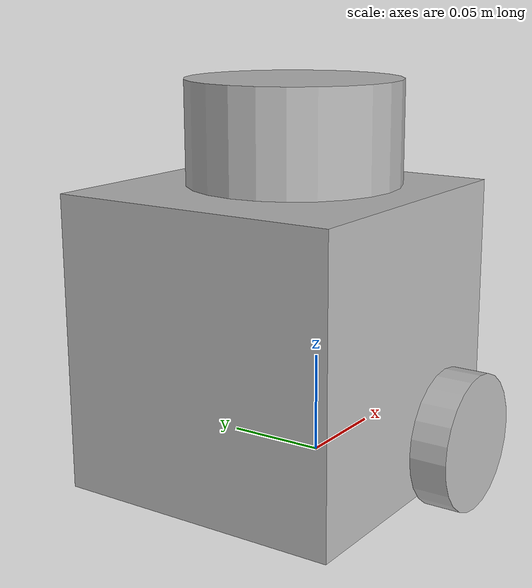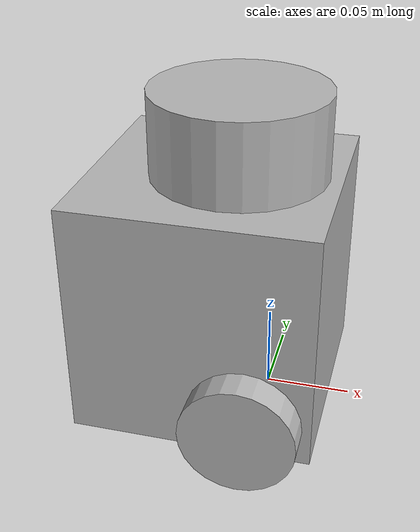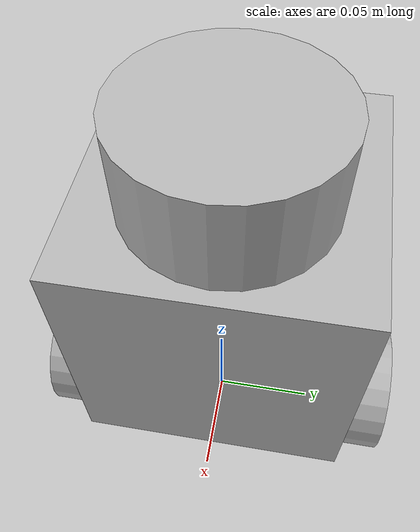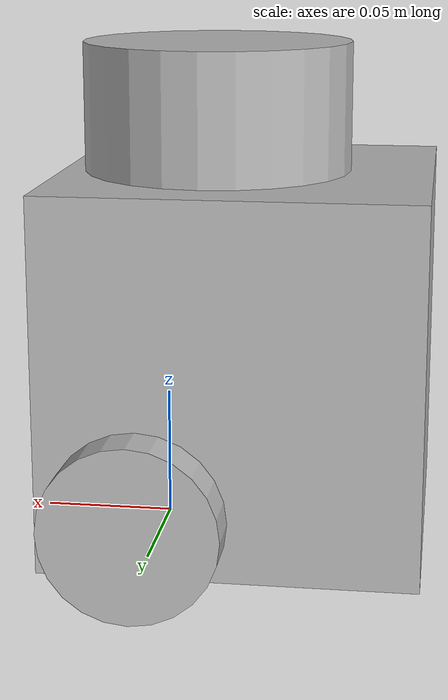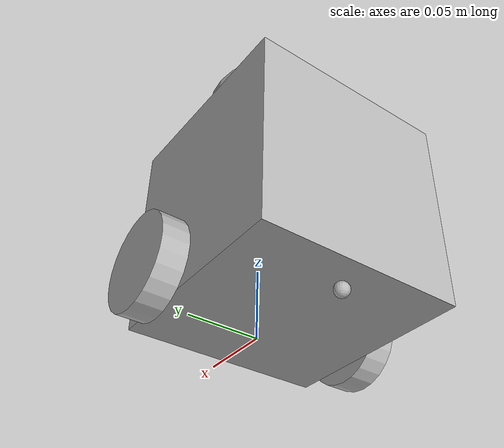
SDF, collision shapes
<?xml version="1.0" ?>
<sdf version="1.5">
  <model name="turtlebot3_burger_picam">

    <link name="base">

      <inertial>
        <pose>-0.032 0 0.070 0 0 0</pose>
        <inertia>
          <ixx>0.001</ixx>
          <ixy>0.000</ixy>
          <ixz>0.000</ixz>
          <iyy>0.001</iyy>
          <iyz>0.000</iyz>
          <izz>0.001</izz>
        </inertia>
        <mass>1.0</mass>
      </inertial>

      <collision name="base_collision">
        <pose>-0.032 0 0.070 0 0 0</pose>
        <geometry>
          <box>
            <size>0.140 0.140 0.140</size>
          </box>
        </geometry>
      </collision>

      <visual name="base_visual">
        <pose>-0.032 0 0 0 0 0</pose>
        <geometry>
          <mesh>
            <uri>model://turtlebot3_common_meshes/burger_base.dae</uri>
            <scale>0.001 0.001 0.001</scale>
          </mesh>
        </geometry>
      </visual>

      <collision name="caster_collision">
        <pose>-0.081 0 -0.004 0 0 0</pose>
        <geometry>
          <sphere>
            <radius>0.005000</radius>
          </sphere>
        </geometry>
        <surface>
          <friction>
            <ode>
              <mu>100000.0</mu>
              <mu2>100000.0</mu2>
              <fdir1>0 0 0</fdir1>
              <slip1>0</slip1>
              <slip2>0</slip2>
            </ode>
          </friction>
        </surface>
      </collision>
    </link>

  <link name="lidar">
    <inertial>
      <pose>-0.020 0 0.161 0 0 0</pose>
      <inertia>
        <ixx>0.001</ixx>
        <ixy>0.000</ixy>
        <ixz>0.000</ixz>
        <iyy>0.001</iyy>
        <iyz>0.000</iyz>
        <izz>0.001</izz>
      </inertia>
      <mass>0.125</mass>
    </inertial>

    <collision name="lidar_sensor_collision">
        <pose>-0.020 0 0.161 0 0 0</pose>
        <geometry>
          <cylinder>
            <radius>0.0508</radius>
            <length>0.055</length>
          </cylinder>
        </geometry>
      </collision>

      <visual name="lidar_sensor_visual">
        <pose>-0.032 0 0.171 0 0 0</pose>
        <geometry>
          <mesh>
            <uri>model://turtlebot3_common_meshes/lds.dae</uri>
            <scale>0.001 0.001 0.001</scale>
          </mesh>
        </geometry>
      </visual>

      <sensor name="hls_lfcd_lds" type="ray">
        <always_on>1</always_on>
        <visualize>0</visualize>
        <pose>-0.032 0 0.171 0 0 0</pose>
        <update_rate>1800</update_rate>
        <ray>
          <scan>
            <horizontal>
              <samples>360</samples>
              <resolution>1.000000</resolution>
              <min_angle>0.000000</min_angle>
              <max_angle>6.280000</max_angle>
            </horizontal>
          </scan>
          <range>
            <min>0.120000</min>
            <max>3.5</max>
            <resolution>0.015000</resolution>
          </range>
          <noise>
            <type>gaussian</type>
            <mean>0.0</mean>
            <stddev>0.01</stddev>
          </noise>
        </ray>
      </sensor>
    </link>

    <link name="left_wheel">

      <inertial>
        <pose>0 0.08 0.023 -1.57 0 0</pose>
        <inertia>
          <ixx>0.001</ixx>
          <ixy>0.000</ixy>
          <ixz>0.000</ixz>
          <iyy>0.001</iyy>
          <iyz>0.000</iyz>
          <izz>0.001</izz>
        </inertia>
        <mass>0.1</mass>
      </inertial>

      <collision name="left_wheel_collision">
        <pose>0 0.08 0.023 -1.57 0 0</pose>
        <geometry>
          <cylinder>
            <radius>0.033</radius>
            <length>0.018</length>
          </cylinder>
        </geometry>
          <surface>
          <!-- This friction pamareter don't contain reliable data!! -->
            <friction>
              <ode>
                <mu>100000.0</mu>
                <mu2>100000.0</mu2>
                <fdir1>0 0 0</fdir1>
                <slip1>0.0</slip1>
                <slip2>0.0</slip2>
              </ode>
          </friction>
        </surface>
      </collision>

      <visual name="left_wheel_visual">
        <pose>0 0.08 0.023 0 0 0</pose>
        <geometry>
          <mesh>
            <uri>model://turtlebot3_common_meshes/tire.dae</uri>
            <scale>0.001 0.001 0.001</scale>
          </mesh>
        </geometry>
      </visual>
    </link>

    <link name="right_wheel">

      <inertial>
        <pose>0.0 -0.08 0.023 -1.57 0 0</pose>
        <inertia>
          <ixx>0.001</ixx>
          <ixy>0.000</ixy>
          <ixz>0.000</ixz>
          <iyy>0.001</iyy>
          <iyz>0.000</iyz>
          <izz>0.001</izz>
        </inertia>
        <mass>0.1</mass>
      </inertial>

      <collision name="right_wheel_collision">
        <pose>0.0 -0.08 0.023 -1.57 0 0</pose>
        <geometry>
          <cylinder>
            <radius>0.033</radius>
            <length>0.018</length>
          </cylinder>
        </geometry>
          <surface>
          <!-- This friction pamareter don't contain reliable data!! -->
            <friction>
              <ode>
                <mu>100000.0</mu>
                <mu2>100000.0</mu2>
                <fdir1>0 0 0</fdir1>
                <slip1>0.0</slip1>
                <slip2>0.0</slip2>
              </ode>
          </friction>
        </surface>
      </collision>

      <visual name="right_wheel_visual">
        <pose>0.0 -0.08 0.023 0 0 0</pose>
        <geometry>
          <mesh>
            <uri>model://turtlebot3_common_meshes/tire.dae</uri>
            <scale>0.001 0.001 0.001</scale>
          </mesh>
        </geometry>
      </visual>
    </link>

    <joint name="left_wheel_joint" type="revolute">
      <parent>base</parent>
      <child>left_wheel</child>
      <pose>0.0 0.08 0.023 -1.57 0 0</pose>
      <axis>
        <xyz>0 1 0</xyz>
      </axis>
    </joint>

    <joint name="right_wheel_joint" type="revolute">
      <parent>base</parent>
      <child>right_wheel</child>
      <pose>0.0 -0.08 0.023 -1.57 0 0</pose>
      <axis>
        <xyz>0 1 0</xyz>
      </axis>
    </joint>

    <joint name="lidar_joint" type="fixed">
      <parent>base</parent>
      <child>lidar</child>
      <pose>-0.032 0 0.171 0 0 0</pose>
      <axis>
        <xyz>0 0 1</xyz>
        <use_parent_model_frame>true</use_parent_model_frame>
      </axis>
    </joint>

    <link name="image">
      <inertial>
        <pose>-0.069 0 0.104 0 0 0</pose>
        <inertia>
          <ixx>0.001</ixx>
          <ixy>0.000</ixy>
          <ixz>0.000</ixz>
          <iyy>0.001</iyy>
          <iyz>0.000</iyz>
          <izz>0.001</izz>
        </inertia>
        <mass>0.035</mass>
      </inertial>

      <collision name="image_collision">
        <pose>-0.069 0 0.104 0 0 0</pose>
        <geometry>
          <box>
            <size>0.008 0.130 0.022</size>
          </box>
        </geometry>
      </collision>

      <sensor name="raspberry_pi_cam" type="camera">
        <pose>0.076 0 0.094 0 0 0</pose>
        <always_on>1</always_on>
        <visualize>0</visualize>
        <update_rate>30</update_rate>
        <camera>
            <horizontal_fov>1.085595</horizontal_fov>
            <image>
                <width>1920</width>
                <height>1080</height>
                <format>R8G8B8</format>
            </image>
            <depth_camera></depth_camera>
            <clip>
                <near>0.02</near>
                <far>300</far>
            </clip>
        </camera>
      </sensor>
    </link>

    <joint name="image_joint" type="fixed">
      <parent>base</parent>
      <child>image</child>
      <pose>0.064 -0.065 0.094 0 0 0</pose>
      <axis>
        <xyz>0 0 1</xyz>
        <use_parent_model_frame>true</use_parent_model_frame>
      </axis>
    </joint>

  <static>0</static>
  </model>
</sdf>
